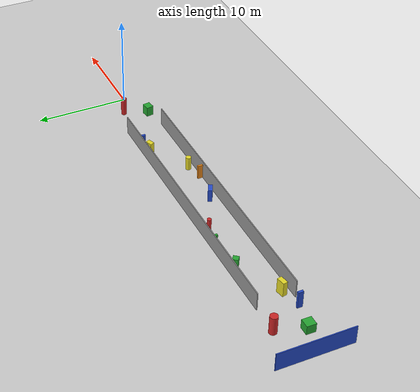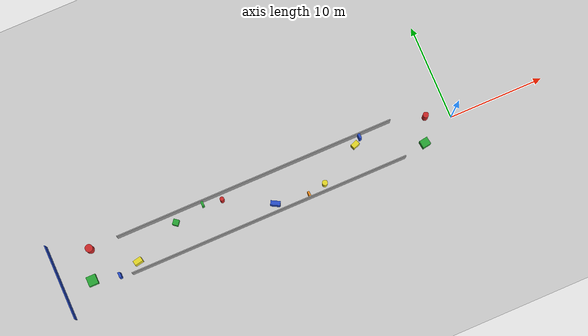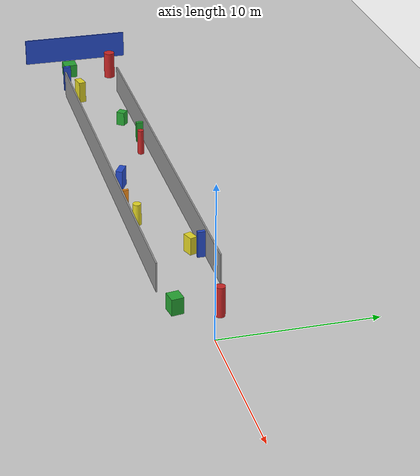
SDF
<?xml version="1.0" ?>
<sdf version="1.6">
  <world name="feature_corridor_world">
    <include><uri>model://sun</uri></include>
    <include><uri>model://ground_plane</uri></include>

    <model name="start_feature_cyl_1">
      <static>true</static>
      <pose>-2.5 1.0 1.0 0 0 0</pose>
      <link name="link">
        <collision name="collision"><geometry><cylinder><radius>0.3</radius><length>2.0</length></cylinder></geometry></collision>
        <visual name="visual"><geometry><cylinder><radius>0.3</radius><length>2.0</length></cylinder></geometry><material><script><name>Gazebo/Red</name></script></material></visual>
      </link>
    </model>

    <model name="start_feature_box_1">
      <static>true</static>
      <pose>-3.6 -1.45 0.55 0 0 0.15</pose>
      <link name="link">
        <collision name="collision"><geometry><box><size>0.9 0.8 1.1</size></box></geometry></collision>
        <visual name="visual"><geometry><box><size>0.9 0.8 1.1</size></box></geometry><material><script><name>Gazebo/Green</name></script></material></visual>
      </link>
    </model>

    <model name="corridor_left_wall">
      <static>true</static>
      <pose>-21.0 2.0 1.0 0 0 0</pose>
      <link name="link">
        <collision name="collision"><geometry><box><size>30.0 0.1 2.0</size></box></geometry></collision>
        <visual name="visual"><geometry><box><size>30.0 0.1 2.0</size></box></geometry><material><script><name>Gazebo/Grey</name></script></material></visual>
      </link>
    </model>

    <model name="corridor_right_wall">
      <static>true</static>
      <pose>-21.0 -2.0 1.0 0 0 0</pose>
      <link name="link">
        <collision name="collision"><geometry><box><size>30.0 0.1 2.0</size></box></geometry></collision>
        <visual name="visual"><geometry><box><size>30.0 0.1 2.0</size></box></geometry><material><script><name>Gazebo/Grey</name></script></material></visual>
      </link>
    </model>

    <model name="left_wall_fin_1">
      <static>true</static>
      <pose>-9.5 1.7 0.9 0 0 0</pose>
      <link name="link">
        <collision name="collision"><geometry><box><size>0.25 0.55 1.8</size></box></geometry></collision>
        <visual name="visual"><geometry><box><size>0.25 0.55 1.8</size></box></geometry><material><script><name>Gazebo/Blue</name></script></material></visual>
      </link>
    </model>

    <model name="mid_feature_box_left_1">
      <static>true</static>
      <pose>-10.2 1.18 0.6 0 0 0.35</pose>
      <link name="link">
        <collision name="collision"><geometry><box><size>0.75 0.5 1.2</size></box></geometry></collision>
        <visual name="visual"><geometry><box><size>0.75 0.5 1.2</size></box></geometry><material><script><name>Gazebo/Yellow</name></script></material></visual>
      </link>
    </model>

    <model name="mid_feature_cyl_right_1">
      <static>true</static>
      <pose>-14.6 -1.25 0.75 0 0 0</pose>
      <link name="link">
        <collision name="collision"><geometry><cylinder><radius>0.28</radius><length>1.5</length></cylinder></geometry></collision>
        <visual name="visual"><geometry><cylinder><radius>0.28</radius><length>1.5</length></cylinder></geometry><material><script><name>Gazebo/Yellow</name></script></material></visual>
      </link>
    </model>

    <model name="right_wall_fin_2">
      <static>true</static>
      <pose>-16.5 -1.7 0.8 0 0 0</pose>
      <link name="link">
        <collision name="collision"><geometry><box><size>0.2 0.6 1.6</size></box></geometry></collision>
        <visual name="visual"><geometry><box><size>0.2 0.6 1.6</size></box></geometry><material><script><name>Gazebo/Orange</name></script></material></visual>
      </link>
    </model>

    <model name="mid_feature_box_right_2">
      <static>true</static>
      <pose>-20.0 -1.15 0.7 0 0 -0.5</pose>
      <link name="link">
        <collision name="collision"><geometry><box><size>1.0 0.45 1.4</size></box></geometry></collision>
        <visual name="visual"><geometry><box><size>1.0 0.45 1.4</size></box></geometry><material><script><name>Gazebo/Blue</name></script></material></visual>
      </link>
    </model>

    <model name="mid_feature_cyl_left_2">
      <static>true</static>
      <pose>-24.8 1.32 0.9 0 0 0</pose>
      <link name="link">
        <collision name="collision"><geometry><cylinder><radius>0.22</radius><length>1.8</length></cylinder></geometry></collision>
        <visual name="visual"><geometry><cylinder><radius>0.22</radius><length>1.8</length></cylinder></geometry><material><script><name>Gazebo/Red</name></script></material></visual>
      </link>
    </model>

    <model name="left_wall_fin_3">
      <static>true</static>
      <pose>-26.8 1.68 0.75 0 0 0</pose>
      <link name="link">
        <collision name="collision"><geometry><box><size>0.25 0.5 1.5</size></box></geometry></collision>
        <visual name="visual"><geometry><box><size>0.25 0.5 1.5</size></box></geometry><material><script><name>Gazebo/Green</name></script></material></visual>
      </link>
    </model>

    <model name="mid_feature_box_left_3">
      <static>true</static>
      <pose>-30.0 1.08 0.5 0 0 0.9</pose>
      <link name="link">
        <collision name="collision"><geometry><box><size>0.6 0.6 1.0</size></box></geometry></collision>
        <visual name="visual"><geometry><box><size>0.6 0.6 1.0</size></box></geometry><material><script><name>Gazebo/Green</name></script></material></visual>
      </link>
    </model>

    <model name="mid_feature_box_right_3">
      <static>true</static>
      <pose>-35.0 -1.08 0.8 0 0 0.2</pose>
      <link name="link">
        <collision name="collision"><geometry><box><size>0.9 0.5 1.6</size></box></geometry></collision>
        <visual name="visual"><geometry><box><size>0.9 0.5 1.6</size></box></geometry><material><script><name>Gazebo/Yellow</name></script></material></visual>
      </link>
    </model>

    <model name="right_wall_fin_4">
      <static>true</static>
      <pose>-37.2 -1.68 0.95 0 0 0</pose>
      <link name="link">
        <collision name="collision"><geometry><box><size>0.25 0.55 1.9</size></box></geometry></collision>
        <visual name="visual"><geometry><box><size>0.25 0.55 1.9</size></box></geometry><material><script><name>Gazebo/Blue</name></script></material></visual>
      </link>
    </model>

    <model name="final_feature_cyl_1">
      <static>true</static>
      <pose>-39.0 2.0 1.0 0 0 0</pose>
      <link name="link">
        <collision name="collision"><geometry><cylinder><radius>0.4</radius><length>2.0</length></cylinder></geometry></collision>
        <visual name="visual"><geometry><cylinder><radius>0.4</radius><length>2.0</length></cylinder></geometry><material><script><name>Gazebo/Red</name></script></material></visual>
      </link>
    </model>

    <model name="final_feature_box_1">
      <static>true</static>
      <pose>-40.0 -1.0 0.5 0 0 0</pose>
      <link name="link">
        <collision name="collision"><geometry><box><size>1.0 1.0 1.0</size></box></geometry></collision>
        <visual name="visual"><geometry><box><size>1.0 1.0 1.0</size></box></geometry><material><script><name>Gazebo/Green</name></script></material></visual>
      </link>
    </model>

    <model name="goal_end_wall">
      <static>true</static>
      <pose>-43.0 0 1.0 0 0 0</pose>
      <link name="link">
        <collision name="collision"><geometry><box><size>0.1 8.0 2.0</size></box></geometry></collision>
        <visual name="visual"><geometry><box><size>0.1 8.0 2.0</size></box></geometry><material><script><name>Gazebo/Blue</name></script></material></visual>
      </link>
    </model>

  </world>
</sdf>
